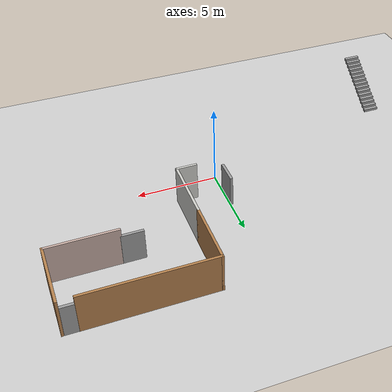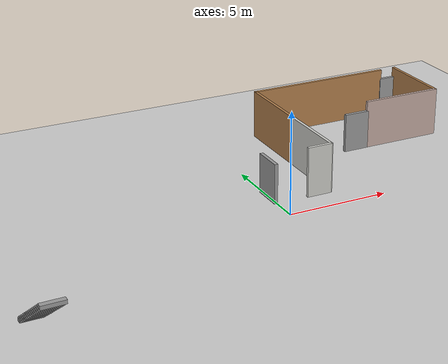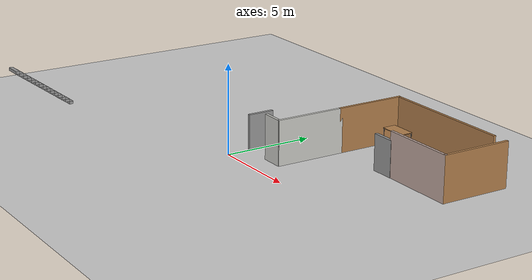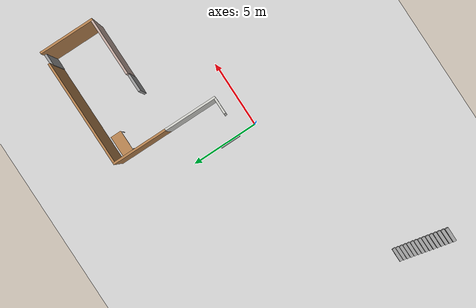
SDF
<sdf version="1.6">
 <world name="default">
  <model name="ground_plane">
   <static>1</static>
   <link name="link">
    <collision name="collision">
     <geometry><plane><normal>0 0 1</normal><size>100 100</size></plane></geometry>
     <surface>
      <contact><collide_bitmask>65535</collide_bitmask></contact>
      <friction><ode><mu>100</mu><mu2>50</mu2></ode></friction>
     </surface>
    </collision>
    <visual name="visual">
     <cast_shadows>0</cast_shadows>
     <geometry><plane><normal>0 0 1</normal><size>100 100</size></plane></geometry>
     <material>
      <script><uri>file://media/materials/scripts/gazebo.material</uri><name>Gazebo/Grey</name></script>
     </material>
    </visual>
   </link>
  </model>
  <model name="table">
   <static>1</static>
   <link name="link">
    <collision name="surface">
     <pose>0 0 1 0 -0 0</pose>
     <geometry><box><size>1.5 0.8 0.03</size></box></geometry>
     <surface><friction><ode><mu>0.6</mu><mu2>0.6</mu2></ode></friction></surface>
    </collision>
    <visual name="visual1">
     <pose>0 0 1 0 -0 0</pose>
     <geometry><box><size>1.5 0.8 0.03</size></box></geometry>
     <material>
      <script><uri>file://media/materials/scripts/gazebo.material</uri><name>Gazebo/Wood</name></script>
     </material>
    </visual>
    <collision name="front_left_leg">
     <pose>0.68 0.38 0.5 0 -0 0</pose>
     <geometry><cylinder><radius>0.02</radius><length>1</length></cylinder></geometry>
    </collision>
    <visual name="front_left_leg">
     <pose>0.68 0.38 0.5 0 -0 0</pose>
     <geometry><cylinder><radius>0.02</radius><length>1</length></cylinder></geometry>
     <material>
      <script><uri>file://media/materials/scripts/gazebo.material</uri><name>Gazebo/Grey</name></script>
     </material>
    </visual>
    <collision name="front_right_leg">
     <pose>0.68 -0.38 0.5 0 -0 0</pose>
     <geometry><cylinder><radius>0.02</radius><length>1</length></cylinder></geometry>
    </collision>
    <visual name="front_right_leg">
     <pose>0.68 -0.38 0.5 0 -0 0</pose>
     <geometry><cylinder><radius>0.02</radius><length>1</length></cylinder></geometry>
     <material>
      <script><uri>file://media/materials/scripts/gazebo.material</uri><name>Gazebo/Grey</name></script>
     </material>
    </visual>
    <collision name="back_right_leg">
     <pose>-0.68 -0.38 0.5 0 -0 0</pose>
     <geometry><cylinder><radius>0.02</radius><length>1</length></cylinder></geometry>
    </collision>
    <visual name="back_right_leg">
     <pose>-0.68 -0.38 0.5 0 -0 0</pose>
     <geometry><cylinder><radius>0.02</radius><length>1</length></cylinder></geometry>
     <material>
      <script><uri>file://media/materials/scripts/gazebo.material</uri><name>Gazebo/Grey</name></script>
     </material>
    </visual>
    <collision name="back_left_leg">
     <pose>-0.68 0.38 0.5 0 -0 0</pose>
     <geometry><cylinder><radius>0.02</radius><length>1</length></cylinder></geometry>
    </collision>
    <visual name="back_left_leg">
     <pose>-0.68 0.38 0.5 0 -0 0</pose>
     <geometry><cylinder><radius>0.02</radius><length>1</length></cylinder></geometry>
     <material>
      <script><uri>file://media/materials/scripts/gazebo.material</uri><name>Gazebo/Grey</name></script>
     </material>
    </visual>
   </link>
   <pose>3.83374 8.23259 0 0 -0 0</pose>
  </model>
  <model name="MyHouse">
   <link name="Door_2">
    <pose>11.9351 7.82689 0 0 -0 0</pose>
    <visual name="Door_2_Visual">
     <pose>0 0 1 0 -0 0</pose>
     <geometry><box><size>0.9 0.17 2</size></box></geometry>
     <material>
      <script><uri>file://media/materials/scripts/gazebo.material</uri><name>Gazebo/Grey</name></script>
      <shader type="pixel"/>
     </material>
    </visual>
    <collision name="Door_2_Collision">
     <pose>0 0 1 0 -0 0</pose>
     <geometry><box><size>0.9 0.17 2</size></box></geometry>
     <surface>
      <friction>
       <ode><mu>1</mu><mu2>1</mu2><fdir1>0 0 0</fdir1><slip1>0</slip1><slip2>0</slip2></ode>
       <torsional>
        <coefficient>1</coefficient>
        <patch_radius>0</patch_radius>
        <surface_radius>0</surface_radius>
        <use_patch_radius>1</use_patch_radius>
        <ode><slip>0</slip></ode>
       </torsional>
      </friction>
      <bounce><restitution_coefficient>0</restitution_coefficient><threshold>1e+06</threshold></bounce>
      <contact>
       <collide_without_contact>0</collide_without_contact>
       <collide_without_contact_bitmask>1</collide_without_contact_bitmask>
       <collide_bitmask>1</collide_bitmask>
       <ode>
        <soft_cfm>0</soft_cfm>
        <soft_erp>0.2</soft_erp>
        <kp>1e+13</kp>
        <kd>1</kd>
        <max_vel>0.01</max_vel>
        <min_depth>0</min_depth>
       </ode>
       <bullet>
        <split_impulse>1</split_impulse>
        <split_impulse_penetration_threshold>-0.01</split_impulse_penetration_threshold>
        <soft_cfm>0</soft_cfm>
        <soft_erp>0.2</soft_erp>
        <kp>1e+13</kp>
        <kd>1</kd>
       </bullet>
      </contact>
     </surface>
    </collision>
   </link>
   <link name="Door_3">
    <pose>1.0088 0.841968 0 0 -0 1.57718</pose>
    <inertial>
     <inertia><ixx>0</ixx><ixy>0</ixy><ixz>0</ixz><iyy>0</iyy><iyz>0</iyz><izz>0</izz></inertia>
     <mass>0</mass>
    </inertial>
    <visual name="Door_3_Visual">
     <pose>0 0 1 0 -0 0</pose>
     <geometry><box><size>1.47298 0.17 2</size></box></geometry>
     <material>
      <script><uri>file://media/materials/scripts/gazebo.material</uri><name>Gazebo/Grey</name></script>
      <shader type="pixel"/>
     </material>
    </visual>
    <collision name="Door_3_Collision">
     <pose>0 0 1 0 -0 0</pose>
     <geometry><box><size>1.47298 0.17 2</size></box></geometry>
     <surface>
      <friction>
       <ode><mu>1</mu><mu2>1</mu2><fdir1>0 0 0</fdir1><slip1>0</slip1><slip2>0</slip2></ode>
       <torsional>
        <coefficient>1</coefficient>
        <patch_radius>0</patch_radius>
        <surface_radius>0</surface_radius>
        <use_patch_radius>1</use_patch_radius>
        <ode><slip>0</slip></ode>
       </torsional>
      </friction>
      <bounce><restitution_coefficient>0</restitution_coefficient><threshold>1e+06</threshold></bounce>
      <contact>
       <collide_without_contact>0</collide_without_contact>
       <collide_without_contact_bitmask>1</collide_without_contact_bitmask>
       <collide_bitmask>1</collide_bitmask>
       <ode>
        <soft_cfm>0</soft_cfm>
        <soft_erp>0.2</soft_erp>
        <kp>1e+13</kp>
        <kd>1</kd>
        <max_vel>0.01</max_vel>
        <min_depth>0</min_depth>
       </ode>
       <bullet>
        <split_impulse>1</split_impulse>
        <split_impulse_penetration_threshold>-0.01</split_impulse_penetration_threshold>
        <soft_cfm>0</soft_cfm>
        <soft_erp>0.2</soft_erp>
        <kp>1e+13</kp>
        <kd>1</kd>
       </bullet>
      </contact>
     </surface>
    </collision>
   </link>
   <link name="Door_4">
    <pose>7.66176 3.99526 0 0 -0 0</pose>
    <inertial>
     <inertia><ixx>0</ixx><ixy>0</ixy><ixz>0</ixz><iyy>0</iyy><iyz>0</iyz><izz>0</izz></inertia>
     <mass>0</mass>
    </inertial>
    <visual name="Door_4_Visual">
     <pose>0 0 1 0 -0 0</pose>
     <geometry><box><size>1.33624 0.17 2</size></box></geometry>
     <material>
      <script><uri>file://media/materials/scripts/gazebo.material</uri><name>Gazebo/Grey</name></script>
      <shader type="pixel"/>
     </material>
    </visual>
    <collision name="Door_4_Collision">
     <pose>0 0 1 0 -0 0</pose>
     <geometry><box><size>1.33624 0.17 2</size></box></geometry>
     <surface>
      <friction>
       <ode><mu>1</mu><mu2>1</mu2><fdir1>0 0 0</fdir1><slip1>0</slip1><slip2>0</slip2></ode>
       <torsional>
        <coefficient>1</coefficient>
        <patch_radius>0</patch_radius>
        <surface_radius>0</surface_radius>
        <use_patch_radius>1</use_patch_radius>
        <ode><slip>0</slip></ode>
       </torsional>
      </friction>
      <bounce><restitution_coefficient>0</restitution_coefficient><threshold>1e+06</threshold></bounce>
      <contact>
       <collide_without_contact>0</collide_without_contact>
       <collide_without_contact_bitmask>1</collide_without_contact_bitmask>
       <collide_bitmask>1</collide_bitmask>
       <ode>
        <soft_cfm>0</soft_cfm>
        <soft_erp>0.2</soft_erp>
        <kp>1e+13</kp>
        <kd>1</kd>
        <max_vel>0.01</max_vel>
        <min_depth>0</min_depth>
       </ode>
       <bullet>
        <split_impulse>1</split_impulse>
        <split_impulse_penetration_threshold>-0.01</split_impulse_penetration_threshold>
        <soft_cfm>0</soft_cfm>
        <soft_erp>0.2</soft_erp>
        <kp>1e+13</kp>
        <kd>1</kd>
       </bullet>
      </contact>
     </surface>
    </collision>
   </link>
   <link name="Stairs_0">
    <visual name="Stairs_0_Visual_14">
     <pose>-11.8697 -7.73923 2.41667 0 -0 0</pose>
     <geometry><box><size>1 0.233333 0.166667</size></box></geometry>
     <material>
      <script><uri>file://media/materials/scripts/gazebo.material</uri><name>Gazebo/Grey</name></script>
      <ambient>1 1 1 1</ambient>
      <shader type="pixel"/>
     </material>
     <meta><layer>0</layer></meta>
    </visual>
    <visual name="Stairs_0_Visual_2">
     <pose>-11.8697 -4.93923 0.416667 0 -0 0</pose>
     <geometry><box><size>1 0.233333 0.166667</size></box></geometry>
     <material>
      <script><uri>file://media/materials/scripts/gazebo.material</uri><name>Gazebo/Grey</name></script>
      <ambient>1 1 1 1</ambient>
      <shader type="pixel"/>
     </material>
     <meta><layer>0</layer></meta>
    </visual>
    <visual name="Stairs_0_Visual_12">
     <pose>-11.8697 -7.27256 2.08333 0 -0 0</pose>
     <geometry><box><size>1 0.233333 0.166667</size></box></geometry>
     <material>
      <script><uri>file://media/materials/scripts/gazebo.material</uri><name>Gazebo/Grey</name></script>
      <ambient>1 1 1 1</ambient>
      <shader type="pixel"/>
     </material>
     <meta><layer>0</layer></meta>
    </visual>
    <visual name="Stairs_0_Visual_9">
     <pose>-11.8697 -6.57256 1.58333 0 -0 0</pose>
     <geometry><box><size>1 0.233333 0.166667</size></box></geometry>
     <material>
      <script><uri>file://media/materials/scripts/gazebo.material</uri><name>Gazebo/Grey</name></script>
      <ambient>1 1 1 1</ambient>
      <shader type="pixel"/>
     </material>
     <meta><layer>0</layer></meta>
    </visual>
    <visual name="Stairs_0_Visual_8">
     <pose>-11.8697 -6.33923 1.41667 0 -0 0</pose>
     <geometry><box><size>1 0.233333 0.166667</size></box></geometry>
     <material>
      <script><uri>file://media/materials/scripts/gazebo.material</uri><name>Gazebo/Grey</name></script>
      <ambient>1 1 1 1</ambient>
      <shader type="pixel"/>
     </material>
     <meta><layer>0</layer></meta>
    </visual>
    <visual name="Stairs_0_Visual_11">
     <pose>-11.8697 -7.03923 1.91667 0 -0 0</pose>
     <geometry><box><size>1 0.233333 0.166667</size></box></geometry>
     <material>
      <script><uri>file://media/materials/scripts/gazebo.material</uri><name>Gazebo/Grey</name></script>
      <ambient>1 1 1 1</ambient>
      <shader type="pixel"/>
     </material>
     <meta><layer>0</layer></meta>
    </visual>
    <visual name="Stairs_0_Visual_13">
     <pose>-11.8697 -7.50589 2.25 0 -0 0</pose>
     <geometry><box><size>1 0.233333 0.166667</size></box></geometry>
     <material>
      <script><uri>file://media/materials/scripts/gazebo.material</uri><name>Gazebo/Grey</name></script>
      <ambient>1 1 1 1</ambient>
      <shader type="pixel"/>
     </material>
     <meta><layer>0</layer></meta>
    </visual>
    <visual name="Stairs_0_Visual_6">
     <pose>-11.8697 -5.87256 1.08333 0 -0 0</pose>
     <geometry><box><size>1 0.233333 0.166667</size></box></geometry>
     <material>
      <script><uri>file://media/materials/scripts/gazebo.material</uri><name>Gazebo/Grey</name></script>
      <ambient>1 1 1 1</ambient>
      <shader type="pixel"/>
     </material>
     <meta><layer>0</layer></meta>
    </visual>
    <visual name="Stairs_0_Visual_1">
     <pose>-11.8697 -4.70589 0.25 0 -0 0</pose>
     <geometry><box><size>1 0.233333 0.166667</size></box></geometry>
     <material>
      <script><uri>file://media/materials/scripts/gazebo.material</uri><name>Gazebo/Grey</name></script>
      <ambient>1 1 1 1</ambient>
      <shader type="pixel"/>
     </material>
     <meta><layer>0</layer></meta>
    </visual>
    <visual name="Stairs_0_Visual_3">
     <pose>-11.8697 -5.17256 0.583333 0 -0 0</pose>
     <geometry><box><size>1 0.233333 0.166667</size></box></geometry>
     <material>
      <script><uri>file://media/materials/scripts/gazebo.material</uri><name>Gazebo/Grey</name></script>
      <ambient>1 1 1 1</ambient>
      <shader type="pixel"/>
     </material>
     <meta><layer>0</layer></meta>
    </visual>
    <visual name="Stairs_0_Visual_4">
     <pose>-11.8697 -5.40589 0.75 0 -0 0</pose>
     <geometry><box><size>1 0.233333 0.166667</size></box></geometry>
     <material>
      <script><uri>file://media/materials/scripts/gazebo.material</uri><name>Gazebo/Grey</name></script>
      <ambient>1 1 1 1</ambient>
      <shader type="pixel"/>
     </material>
     <meta><layer>0</layer></meta>
    </visual>
    <visual name="Stairs_0_Visual_7">
     <pose>-11.8697 -6.10589 1.25 0 -0 0</pose>
     <geometry><box><size>1 0.233333 0.166667</size></box></geometry>
     <material>
      <script><uri>file://media/materials/scripts/gazebo.material</uri><name>Gazebo/Grey</name></script>
      <ambient>1 1 1 1</ambient>
      <shader type="pixel"/>
     </material>
     <meta><layer>0</layer></meta>
    </visual>
    <visual name="Stairs_0_Visual_10">
     <pose>-11.8697 -6.80589 1.75 0 -0 0</pose>
     <geometry><box><size>1 0.233333 0.166667</size></box></geometry>
     <material>
      <script><uri>file://media/materials/scripts/gazebo.material</uri><name>Gazebo/Grey</name></script>
      <ambient>1 1 1 1</ambient>
      <shader type="pixel"/>
     </material>
     <meta><layer>0</layer></meta>
    </visual>
    <visual name="Stairs_0_Visual_0">
     <pose>-11.8697 -4.47256 0.083333 0 -0 0</pose>
     <geometry><box><size>1 0.233333 0.166667</size></box></geometry>
     <material>
      <script><uri>file://media/materials/scripts/gazebo.material</uri><name>Gazebo/Grey</name></script>
      <ambient>1 1 1 1</ambient>
      <shader type="pixel"/>
     </material>
     <meta><layer>0</layer></meta>
    </visual>
    <visual name="Stairs_0_Visual_5">
     <pose>-11.8697 -5.63923 0.916667 0 -0 0</pose>
     <geometry><box><size>1 0.233333 0.166667</size></box></geometry>
     <material>
      <script><uri>file://media/materials/scripts/gazebo.material</uri><name>Gazebo/Grey</name></script>
      <ambient>1 1 1 1</ambient>
      <shader type="pixel"/>
     </material>
     <meta><layer>0</layer></meta>
    </visual>
    <collision name="Stairs_0_Collision_1">
     <pose>-11.8697 -4.70589 0.25 0 -0 0</pose>
     <geometry><box><size>1 0.233333 0.166667</size></box></geometry>
     <surface>
      <friction>
       <ode><mu>1</mu><mu2>1</mu2><fdir1>0 0 0</fdir1><slip1>0</slip1><slip2>0</slip2></ode>
       <torsional>
        <coefficient>1</coefficient>
        <patch_radius>0</patch_radius>
        <surface_radius>0</surface_radius>
        <use_patch_radius>1</use_patch_radius>
        <ode><slip>0</slip></ode>
       </torsional>
      </friction>
      <bounce><restitution_coefficient>0</restitution_coefficient><threshold>1e+06</threshold></bounce>
      <contact>
       <collide_without_contact>0</collide_without_contact>
       <collide_without_contact_bitmask>1</collide_without_contact_bitmask>
       <collide_bitmask>1</collide_bitmask>
       <ode>
        <soft_cfm>0</soft_cfm>
        <soft_erp>0.2</soft_erp>
        <kp>1e+13</kp>
        <kd>1</kd>
        <max_vel>0.01</max_vel>
        <min_depth>0</min_depth>
       </ode>
       <bullet>
        <split_impulse>1</split_impulse>
        <split_impulse_penetration_threshold>-0.01</split_impulse_penetration_threshold>
        <soft_cfm>0</soft_cfm>
        <soft_erp>0.2</soft_erp>
        <kp>1e+13</kp>
        <kd>1</kd>
       </bullet>
      </contact>
     </surface>
    </collision>
    <collision name="Stairs_0_Collision_7">
     <pose>-11.8697 -6.10589 1.25 0 -0 0</pose>
     <geometry><box><size>1 0.233333 0.166667</size></box></geometry>
     <surface>
      <friction>
       <ode><mu>1</mu><mu2>1</mu2><fdir1>0 0 0</fdir1><slip1>0</slip1><slip2>0</slip2></ode>
       <torsional>
        <coefficient>1</coefficient>
        <patch_radius>0</patch_radius>
        <surface_radius>0</surface_radius>
        <use_patch_radius>1</use_patch_radius>
        <ode><slip>0</slip></ode>
       </torsional>
      </friction>
      <bounce><restitution_coefficient>0</restitution_coefficient><threshold>1e+06</threshold></bounce>
      <contact>
       <collide_without_contact>0</collide_without_contact>
       <collide_without_contact_bitmask>1</collide_without_contact_bitmask>
       <collide_bitmask>1</collide_bitmask>
       <ode>
        <soft_cfm>0</soft_cfm>
        <soft_erp>0.2</soft_erp>
        <kp>1e+13</kp>
        <kd>1</kd>
        <max_vel>0.01</max_vel>
        <min_depth>0</min_depth>
       </ode>
       <bullet>
        <split_impulse>1</split_impulse>
        <split_impulse_penetration_threshold>-0.01</split_impulse_penetration_threshold>
        <soft_cfm>0</soft_cfm>
        <soft_erp>0.2</soft_erp>
        <kp>1e+13</kp>
        <kd>1</kd>
       </bullet>
      </contact>
     </surface>
    </collision>
    <collision name="Stairs_0_Collision_10">
     <pose>-11.8697 -6.80589 1.75 0 -0 0</pose>
     <geometry><box><size>1 0.233333 0.166667</size></box></geometry>
     <surface>
      <friction>
       <ode><mu>1</mu><mu2>1</mu2><fdir1>0 0 0</fdir1><slip1>0</slip1><slip2>0</slip2></ode>
       <torsional>
        <coefficient>1</coefficient>
        <patch_radius>0</patch_radius>
        <surface_radius>0</surface_radius>
        <use_patch_radius>1</use_patch_radius>
        <ode><slip>0</slip></ode>
       </torsional>
      </friction>
      <bounce><restitution_coefficient>0</restitution_coefficient><threshold>1e+06</threshold></bounce>
      <contact>
       <collide_without_contact>0</collide_without_contact>
       <collide_without_contact_bitmask>1</collide_without_contact_bitmask>
       <collide_bitmask>1</collide_bitmask>
       <ode>
        <soft_cfm>0</soft_cfm>
        <soft_erp>0.2</soft_erp>
        <kp>1e+13</kp>
        <kd>1</kd>
        <max_vel>0.01</max_vel>
        <min_depth>0</min_depth>
       </ode>
       <bullet>
        <split_impulse>1</split_impulse>
        <split_impulse_penetration_threshold>-0.01</split_impulse_penetration_threshold>
        <soft_cfm>0</soft_cfm>
        <soft_erp>0.2</soft_erp>
        <kp>1e+13</kp>
        <kd>1</kd>
       </bullet>
      </contact>
     </surface>
    </collision>
    <collision name="Stairs_0_Collision_14">
     <pose>-11.8697 -7.73923 2.41667 0 -0 0</pose>
     <geometry><box><size>1 0.233333 0.166667</size></box></geometry>
     <surface>
      <friction>
       <ode><mu>1</mu><mu2>1</mu2><fdir1>0 0 0</fdir1><slip1>0</slip1><slip2>0</slip2></ode>
       <torsional>
        <coefficient>1</coefficient>
        <patch_radius>0</patch_radius>
        <surface_radius>0</surface_radius>
        <use_patch_radius>1</use_patch_radius>
        <ode><slip>0</slip></ode>
       </torsional>
      </friction>
      <bounce><restitution_coefficient>0</restitution_coefficient><threshold>1e+06</threshold></bounce>
      <contact>
       <collide_without_contact>0</collide_without_contact>
       <collide_without_contact_bitmask>1</collide_without_contact_bitmask>
       <collide_bitmask>1</collide_bitmask>
       <ode>
        <soft_cfm>0</soft_cfm>
        <soft_erp>0.2</soft_erp>
        <kp>1e+13</kp>
        <kd>1</kd>
        <max_vel>0.01</max_vel>
        <min_depth>0</min_depth>
       </ode>
       <bullet>
        <split_impulse>1</split_impulse>
        <split_impulse_penetration_threshold>-0.01</split_impulse_penetration_threshold>
        <soft_cfm>0</soft_cfm>
        <soft_erp>0.2</soft_erp>
        <kp>1e+13</kp>
        <kd>1</kd>
       </bullet>
      </contact>
     </surface>
    </collision>
    <collision name="Stairs_0_Collision_4">
     <pose>-11.8697 -5.40589 0.75 0 -0 0</pose>
     <geometry><box><size>1 0.233333 0.166667</size></box></geometry>
     <surface>
      <friction>
       <ode><mu>1</mu><mu2>1</mu2><fdir1>0 0 0</fdir1><slip1>0</slip1><slip2>0</slip2></ode>
       <torsional>
        <coefficient>1</coefficient>
        <patch_radius>0</patch_radius>
        <surface_radius>0</surface_radius>
        <use_patch_radius>1</use_patch_radius>
        <ode><slip>0</slip></ode>
       </torsional>
      </friction>
      <bounce><restitution_coefficient>0</restitution_coefficient><threshold>1e+06</threshold></bounce>
      <contact>
       <collide_without_contact>0</collide_without_contact>
       <collide_without_contact_bitmask>1</collide_without_contact_bitmask>
       <collide_bitmask>1</collide_bitmask>
       <ode>
        <soft_cfm>0</soft_cfm>
        <soft_erp>0.2</soft_erp>
        <kp>1e+13</kp>
        <kd>1</kd>
        <max_vel>0.01</max_vel>
        <min_depth>0</min_depth>
       </ode>
       <bullet>
        <split_impulse>1</split_impulse>
        <split_impulse_penetration_threshold>-0.01</split_impulse_penetration_threshold>
        <soft_cfm>0</soft_cfm>
        <soft_erp>0.2</soft_erp>
        <kp>1e+13</kp>
        <kd>1</kd>
       </bullet>
      </contact>
     </surface>
    </collision>
    <collision name="Stairs_0_Collision_13">
     <pose>-11.8697 -7.50589 2.25 0 -0 0</pose>
     <geometry><box><size>1 0.233333 0.166667</size></box></geometry>
     <surface>
      <friction>
       <ode><mu>1</mu><mu2>1</mu2><fdir1>0 0 0</fdir1><slip1>0</slip1><slip2>0</slip2></ode>
       <torsional>
        <coefficient>1</coefficient>
        <patch_radius>0</patch_radius>
        <surface_radius>0</surface_radius>
        <use_patch_radius>1</use_patch_radius>
        <ode><slip>0</slip></ode>
       </torsional>
      </friction>
      <bounce><restitution_coefficient>0</restitution_coefficient><threshold>1e+06</threshold></bounce>
      <contact>
       <collide_without_contact>0</collide_without_contact>
       <collide_without_contact_bitmask>1</collide_without_contact_bitmask>
       <collide_bitmask>1</collide_bitmask>
       <ode>
        <soft_cfm>0</soft_cfm>
        <soft_erp>0.2</soft_erp>
        <kp>1e+13</kp>
        <kd>1</kd>
        <max_vel>0.01</max_vel>
        <min_depth>0</min_depth>
       </ode>
       <bullet>
        <split_impulse>1</split_impulse>
        <split_impulse_penetration_threshold>-0.01</split_impulse_penetration_threshold>
        <soft_cfm>0</soft_cfm>
        <soft_erp>0.2</soft_erp>
        <kp>1e+13</kp>
        <kd>1</kd>
       </bullet>
      </contact>
     </surface>
    </collision>
    <collision name="Stairs_0_Collision_6">
     <pose>-11.8697 -5.87256 1.08333 0 -0 0</pose>
     <geometry><box><size>1 0.233333 0.166667</size></box></geometry>
     <surface>
      <friction>
       <ode><mu>1</mu><mu2>1</mu2><fdir1>0 0 0</fdir1><slip1>0</slip1><slip2>0</slip2></ode>
       <torsional>
        <coefficient>1</coefficient>
        <patch_radius>0</patch_radius>
        <surface_radius>0</surface_radius>
        <use_patch_radius>1</use_patch_radius>
        <ode><slip>0</slip></ode>
       </torsional>
      </friction>
      <bounce><restitution_coefficient>0</restitution_coefficient><threshold>1e+06</threshold></bounce>
      <contact>
       <collide_without_contact>0</collide_without_contact>
       <collide_without_contact_bitmask>1</collide_without_contact_bitmask>
       <collide_bitmask>1</collide_bitmask>
       <ode>
        <soft_cfm>0</soft_cfm>
        <soft_erp>0.2</soft_erp>
        <kp>1e+13</kp>
        <kd>1</kd>
        <max_vel>0.01</max_vel>
        <min_depth>0</min_depth>
       </ode>
       <bullet>
        <split_impulse>1</split_impulse>
        <split_impulse_penetration_threshold>-0.01</split_impulse_penetration_threshold>
        <soft_cfm>0</soft_cfm>
        <soft_erp>0.2</soft_erp>
        <kp>1e+13</kp>
        <kd>1</kd>
       </bullet>
      </contact>
     </surface>
    </collision>
    <collision name="Stairs_0_Collision_3">
     <pose>-11.8697 -5.17256 0.583333 0 -0 0</pose>
     <geometry><box><size>1 0.233333 0.166667</size></box></geometry>
     <surface>
      <friction>
       <ode><mu>1</mu><mu2>1</mu2><fdir1>0 0 0</fdir1><slip1>0</slip1><slip2>0</slip2></ode>
       <torsional>
        <coefficient>1</coefficient>
        <patch_radius>0</patch_radius>
        <surface_radius>0</surface_radius>
        <use_patch_radius>1</use_patch_radius>
        <ode><slip>0</slip></ode>
       </torsional>
      </friction>
      <bounce><restitution_coefficient>0</restitution_coefficient><threshold>1e+06</threshold></bounce>
      <contact>
       <collide_without_contact>0</collide_without_contact>
       <collide_without_contact_bitmask>1</collide_without_contact_bitmask>
       <collide_bitmask>1</collide_bitmask>
       <ode>
        <soft_cfm>0</soft_cfm>
        <soft_erp>0.2</soft_erp>
        <kp>1e+13</kp>
        <kd>1</kd>
        <max_vel>0.01</max_vel>
        <min_depth>0</min_depth>
       </ode>
       <bullet>
        <split_impulse>1</split_impulse>
        <split_impulse_penetration_threshold>-0.01</split_impulse_penetration_threshold>
        <soft_cfm>0</soft_cfm>
        <soft_erp>0.2</soft_erp>
        <kp>1e+13</kp>
        <kd>1</kd>
       </bullet>
      </contact>
     </surface>
    </collision>
    <collision name="Stairs_0_Collision_8">
     <pose>-11.8697 -6.33923 1.41667 0 -0 0</pose>
     <geometry><box><size>1 0.233333 0.166667</size></box></geometry>
     <surface>
      <friction>
       <ode><mu>1</mu><mu2>1</mu2><fdir1>0 0 0</fdir1><slip1>0</slip1><slip2>0</slip2></ode>
       <torsional>
        <coefficient>1</coefficient>
        <patch_radius>0</patch_radius>
        <surface_radius>0</surface_radius>
        <use_patch_radius>1</use_patch_radius>
        <ode><slip>0</slip></ode>
       </torsional>
      </friction>
      <bounce><restitution_coefficient>0</restitution_coefficient><threshold>1e+06</threshold></bounce>
      <contact>
       <collide_without_contact>0</collide_without_contact>
       <collide_without_contact_bitmask>1</collide_without_contact_bitmask>
       <collide_bitmask>1</collide_bitmask>
       <ode>
        <soft_cfm>0</soft_cfm>
        <soft_erp>0.2</soft_erp>
        <kp>1e+13</kp>
        <kd>1</kd>
        <max_vel>0.01</max_vel>
        <min_depth>0</min_depth>
       </ode>
       <bullet>
        <split_impulse>1</split_impulse>
        <split_impulse_penetration_threshold>-0.01</split_impulse_penetration_threshold>
        <soft_cfm>0</soft_cfm>
        <soft_erp>0.2</soft_erp>
        <kp>1e+13</kp>
        <kd>1</kd>
       </bullet>
      </contact>
     </surface>
    </collision>
    <collision name="Stairs_0_Collision_2">
     <pose>-11.8697 -4.93923 0.416667 0 -0 0</pose>
     <geometry><box><size>1 0.233333 0.166667</size></box></geometry>
     <surface>
      <friction>
       <ode><mu>1</mu><mu2>1</mu2><fdir1>0 0 0</fdir1><slip1>0</slip1><slip2>0</slip2></ode>
       <torsional>
        <coefficient>1</coefficient>
        <patch_radius>0</patch_radius>
        <surface_radius>0</surface_radius>
        <use_patch_radius>1</use_patch_radius>
        <ode><slip>0</slip></ode>
       </torsional>
      </friction>
      <bounce><restitution_coefficient>0</restitution_coefficient><threshold>1e+06</threshold></bounce>
      <contact>
       <collide_without_contact>0</collide_without_contact>
       <collide_without_contact_bitmask>1</collide_without_contact_bitmask>
       <collide_bitmask>1</collide_bitmask>
       <ode>
        <soft_cfm>0</soft_cfm>
        <soft_erp>0.2</soft_erp>
        <kp>1e+13</kp>
        <kd>1</kd>
        <max_vel>0.01</max_vel>
        <min_depth>0</min_depth>
       </ode>
       <bullet>
        <split_impulse>1</split_impulse>
        <split_impulse_penetration_threshold>-0.01</split_impulse_penetration_threshold>
        <soft_cfm>0</soft_cfm>
        <soft_erp>0.2</soft_erp>
        <kp>1e+13</kp>
        <kd>1</kd>
       </bullet>
      </contact>
     </surface>
    </collision>
    <collision name="Stairs_0_Collision_11">
     <pose>-11.8697 -7.03923 1.91667 0 -0 0</pose>
     <geometry><box><size>1 0.233333 0.166667</size></box></geometry>
     <surface>
      <friction>
       <ode><mu>1</mu><mu2>1</mu2><fdir1>0 0 0</fdir1><slip1>0</slip1><slip2>0</slip2></ode>
       <torsional>
        <coefficient>1</coefficient>
        <patch_radius>0</patch_radius>
        <surface_radius>0</surface_radius>
        <use_patch_radius>1</use_patch_radius>
        <ode><slip>0</slip></ode>
       </torsional>
      </friction>
      <bounce><restitution_coefficient>0</restitution_coefficient><threshold>1e+06</threshold></bounce>
      <contact>
       <collide_without_contact>0</collide_without_contact>
       <collide_without_contact_bitmask>1</collide_without_contact_bitmask>
       <collide_bitmask>1</collide_bitmask>
       <ode>
        <soft_cfm>0</soft_cfm>
        <soft_erp>0.2</soft_erp>
        <kp>1e+13</kp>
        <kd>1</kd>
        <max_vel>0.01</max_vel>
        <min_depth>0</min_depth>
       </ode>
       <bullet>
        <split_impulse>1</split_impulse>
        <split_impulse_penetration_threshold>-0.01</split_impulse_penetration_threshold>
        <soft_cfm>0</soft_cfm>
        <soft_erp>0.2</soft_erp>
        <kp>1e+13</kp>
        <kd>1</kd>
       </bullet>
      </contact>
     </surface>
    </collision>
    <collision name="Stairs_0_Collision_9">
     <pose>-11.8697 -6.57256 1.58333 0 -0 0</pose>
     <geometry><box><size>1 0.233333 0.166667</size></box></geometry>
     <surface>
      <friction>
       <ode><mu>1</mu><mu2>1</mu2><fdir1>0 0 0</fdir1><slip1>0</slip1><slip2>0</slip2></ode>
       <torsional>
        <coefficient>1</coefficient>
        <patch_radius>0</patch_radius>
        <surface_radius>0</surface_radius>
        <use_patch_radius>1</use_patch_radius>
        <ode><slip>0</slip></ode>
       </torsional>
      </friction>
      <bounce><restitution_coefficient>0</restitution_coefficient><threshold>1e+06</threshold></bounce>
      <contact>
       <collide_without_contact>0</collide_without_contact>
       <collide_without_contact_bitmask>1</collide_without_contact_bitmask>
       <collide_bitmask>1</collide_bitmask>
       <ode>
        <soft_cfm>0</soft_cfm>
        <soft_erp>0.2</soft_erp>
        <kp>1e+13</kp>
        <kd>1</kd>
        <max_vel>0.01</max_vel>
        <min_depth>0</min_depth>
       </ode>
       <bullet>
        <split_impulse>1</split_impulse>
        <split_impulse_penetration_threshold>-0.01</split_impulse_penetration_threshold>
        <soft_cfm>0</soft_cfm>
        <soft_erp>0.2</soft_erp>
        <kp>1e+13</kp>
        <kd>1</kd>
       </bullet>
      </contact>
     </surface>
    </collision>
    <collision name="Stairs_0_Collision_12">
     <pose>-11.8697 -7.27256 2.08333 0 -0 0</pose>
     <geometry><box><size>1 0.233333 0.166667</size></box></geometry>
     <surface>
      <friction>
       <ode><mu>1</mu><mu2>1</mu2><fdir1>0 0 0</fdir1><slip1>0</slip1><slip2>0</slip2></ode>
       <torsional>
        <coefficient>1</coefficient>
        <patch_radius>0</patch_radius>
        <surface_radius>0</surface_radius>
        <use_patch_radius>1</use_patch_radius>
        <ode><slip>0</slip></ode>
       </torsional>
      </friction>
      <bounce><restitution_coefficient>0</restitution_coefficient><threshold>1e+06</threshold></bounce>
      <contact>
       <collide_without_contact>0</collide_without_contact>
       <collide_without_contact_bitmask>1</collide_without_contact_bitmask>
       <collide_bitmask>1</collide_bitmask>
       <ode>
        <soft_cfm>0</soft_cfm>
        <soft_erp>0.2</soft_erp>
        <kp>1e+13</kp>
        <kd>1</kd>
        <max_vel>0.01</max_vel>
        <min_depth>0</min_depth>
       </ode>
       <bullet>
        <split_impulse>1</split_impulse>
        <split_impulse_penetration_threshold>-0.01</split_impulse_penetration_threshold>
        <soft_cfm>0</soft_cfm>
        <soft_erp>0.2</soft_erp>
        <kp>1e+13</kp>
        <kd>1</kd>
       </bullet>
      </contact>
     </surface>
    </collision>
    <collision name="Stairs_0_Collision_5">
     <pose>-11.8697 -5.63923 0.916667 0 -0 0</pose>
     <geometry><box><size>1 0.233333 0.166667</size></box></geometry>
     <surface>
      <friction>
       <ode><mu>1</mu><mu2>1</mu2><fdir1>0 0 0</fdir1><slip1>0</slip1><slip2>0</slip2></ode>
       <torsional>
        <coefficient>1</coefficient>
        <patch_radius>0</patch_radius>
        <surface_radius>0</surface_radius>
        <use_patch_radius>1</use_patch_radius>
        <ode><slip>0</slip></ode>
       </torsional>
      </friction>
      <bounce><restitution_coefficient>0</restitution_coefficient><threshold>1e+06</threshold></bounce>
      <contact>
       <collide_without_contact>0</collide_without_contact>
       <collide_without_contact_bitmask>1</collide_without_contact_bitmask>
       <collide_bitmask>1</collide_bitmask>
       <ode>
        <soft_cfm>0</soft_cfm>
        <soft_erp>0.2</soft_erp>
        <kp>1e+13</kp>
        <kd>1</kd>
        <max_vel>0.01</max_vel>
        <min_depth>0</min_depth>
       </ode>
       <bullet>
        <split_impulse>1</split_impulse>
        <split_impulse_penetration_threshold>-0.01</split_impulse_penetration_threshold>
        <soft_cfm>0</soft_cfm>
        <soft_erp>0.2</soft_erp>
        <kp>1e+13</kp>
        <kd>1</kd>
       </bullet>
      </contact>
     </surface>
    </collision>
    <collision name="Stairs_0_Collision_0">
     <pose>-11.8697 -4.47256 0.083333 0 -0 0</pose>
     <geometry><box><size>1 0.233333 0.166667</size></box></geometry>
     <surface>
      <friction>
       <ode><mu>1</mu><mu2>1</mu2><fdir1>0 0 0</fdir1><slip1>0</slip1><slip2>0</slip2></ode>
       <torsional>
        <coefficient>1</coefficient>
        <patch_radius>0</patch_radius>
        <surface_radius>0</surface_radius>
        <use_patch_radius>1</use_patch_radius>
        <ode><slip>0</slip></ode>
       </torsional>
      </friction>
      <bounce><restitution_coefficient>0</restitution_coefficient><threshold>1e+06</threshold></bounce>
      <contact>
       <collide_without_contact>0</collide_without_contact>
       <collide_without_contact_bitmask>1</collide_without_contact_bitmask>
       <collide_bitmask>1</collide_bitmask>
       <ode>
        <soft_cfm>0</soft_cfm>
        <soft_erp>0.2</soft_erp>
        <kp>1e+13</kp>
        <kd>1</kd>
        <max_vel>0.01</max_vel>
        <min_depth>0</min_depth>
       </ode>
       <bullet>
        <split_impulse>1</split_impulse>
        <split_impulse_penetration_threshold>-0.01</split_impulse_penetration_threshold>
        <soft_cfm>0</soft_cfm>
        <soft_erp>0.2</soft_erp>
        <kp>1e+13</kp>
        <kd>1</kd>
       </bullet>
      </contact>
     </surface>
    </collision>
   </link>
   <link name="Wall_23">
    <pose>3.88913 5.925 0 0 -0 1.5708</pose>
    <visual name="Wall_23_Visual">
     <pose>0 0 1.25 0 -0 0</pose>
     <geometry><box><size>4 0.15 2.5</size></box></geometry>
     <material>
      <script><uri>file://media/materials/scripts/gazebo.material</uri><name>Gazebo/Wood</name></script>
      <ambient>1 1 1 1</ambient>
      <shader type="pixel"/>
     </material>
     <meta><layer>0</layer></meta>
    </visual>
    <collision name="Wall_23_Collision">
     <pose>0 0 1.25 0 -0 0</pose>
     <geometry><box><size>4 0.15 2.5</size></box></geometry>
     <surface>
      <friction>
       <ode><mu>1</mu><mu2>1</mu2><fdir1>0 0 0</fdir1><slip1>0</slip1><slip2>0</slip2></ode>
       <torsional>
        <coefficient>1</coefficient>
        <patch_radius>0</patch_radius>
        <surface_radius>0</surface_radius>
        <use_patch_radius>1</use_patch_radius>
        <ode><slip>0</slip></ode>
       </torsional>
      </friction>
      <bounce><restitution_coefficient>0</restitution_coefficient><threshold>1e+06</threshold></bounce>
      <contact>
       <collide_without_contact>0</collide_without_contact>
       <collide_without_contact_bitmask>1</collide_without_contact_bitmask>
       <collide_bitmask>1</collide_bitmask>
       <ode>
        <soft_cfm>0</soft_cfm>
        <soft_erp>0.2</soft_erp>
        <kp>1e+13</kp>
        <kd>1</kd>
        <max_vel>0.01</max_vel>
        <min_depth>0</min_depth>
       </ode>
       <bullet>
        <split_impulse>1</split_impulse>
        <split_impulse_penetration_threshold>-0.01</split_impulse_penetration_threshold>
        <soft_cfm>0</soft_cfm>
        <soft_erp>0.2</soft_erp>
        <kp>1e+13</kp>
        <kd>1</kd>
       </bullet>
      </contact>
     </surface>
    </collision>
   </link>
   <link name="Wall_26">
    <pose>12.425 5.925 0 0 -0 1.5708</pose>
    <visual name="Wall_26_Visual">
     <pose>0 0 1.25 0 -0 0</pose>
     <geometry><box><size>4 0.15 2.5</size></box></geometry>
     <material>
      <script><uri>file://media/materials/scripts/gazebo.material</uri><name>Gazebo/Wood</name></script>
      <ambient>1 1 1 1</ambient>
      <shader type="pixel"/>
     </material>
     <meta><layer>0</layer></meta>
    </visual>
    <collision name="Wall_26_Collision">
     <pose>0 0 1.25 0 -0 0</pose>
     <geometry><box><size>4 0.15 2.5</size></box></geometry>
     <surface>
      <friction>
       <ode><mu>1</mu><mu2>1</mu2><fdir1>0 0 0</fdir1><slip1>0</slip1><slip2>0</slip2></ode>
       <torsional>
        <coefficient>1</coefficient>
        <patch_radius>0</patch_radius>
        <surface_radius>0</surface_radius>
        <use_patch_radius>1</use_patch_radius>
        <ode><slip>0</slip></ode>
       </torsional>
      </friction>
      <bounce><restitution_coefficient>0</restitution_coefficient><threshold>1e+06</threshold></bounce>
      <contact>
       <collide_without_contact>0</collide_without_contact>
       <collide_without_contact_bitmask>1</collide_without_contact_bitmask>
       <collide_bitmask>1</collide_bitmask>
       <ode>
        <soft_cfm>0</soft_cfm>
        <soft_erp>0.2</soft_erp>
        <kp>1e+13</kp>
        <kd>1</kd>
        <max_vel>0.01</max_vel>
        <min_depth>0</min_depth>
       </ode>
       <bullet>
        <split_impulse>1</split_impulse>
        <split_impulse_penetration_threshold>-0.01</split_impulse_penetration_threshold>
        <soft_cfm>0</soft_cfm>
        <soft_erp>0.2</soft_erp>
        <kp>1e+13</kp>
        <kd>1</kd>
       </bullet>
      </contact>
     </surface>
    </collision>
   </link>
   <link name="Wall_28">
    <pose>7.68913 7.85 0 0 -0 0</pose>
    <visual name="Wall_28_Visual">
     <pose>0 0 1.25 0 -0 0</pose>
     <geometry><box><size>7.75 0.15 2.5</size></box></geometry>
     <material>
      <script><uri>file://media/materials/scripts/gazebo.material</uri><name>Gazebo/Wood</name></script>
      <ambient>1 1 1 1</ambient>
      <shader type="pixel"/>
     </material>
     <meta><layer>0</layer></meta>
    </visual>
    <collision name="Wall_28_Collision">
     <pose>0 0 1.25 0 -0 0</pose>
     <geometry><box><size>7.75 0.15 2.5</size></box></geometry>
     <surface>
      <friction>
       <ode><mu>1</mu><mu2>1</mu2><fdir1>0 0 0</fdir1><slip1>0</slip1><slip2>0</slip2></ode>
       <torsional>
        <coefficient>1</coefficient>
        <patch_radius>0</patch_radius>
        <surface_radius>0</surface_radius>
        <use_patch_radius>1</use_patch_radius>
        <ode><slip>0</slip></ode>
       </torsional>
      </friction>
      <bounce><restitution_coefficient>0</restitution_coefficient><threshold>1e+06</threshold></bounce>
      <contact>
       <collide_without_contact>0</collide_without_contact>
       <collide_without_contact_bitmask>1</collide_without_contact_bitmask>
       <collide_bitmask>1</collide_bitmask>
       <ode>
        <soft_cfm>0</soft_cfm>
        <soft_erp>0.2</soft_erp>
        <kp>1e+13</kp>
        <kd>1</kd>
        <max_vel>0.01</max_vel>
        <min_depth>0</min_depth>
       </ode>
       <bullet>
        <split_impulse>1</split_impulse>
        <split_impulse_penetration_threshold>-0.01</split_impulse_penetration_threshold>
        <soft_cfm>0</soft_cfm>
        <soft_erp>0.2</soft_erp>
        <kp>1e+13</kp>
        <kd>1</kd>
       </bullet>
      </contact>
     </surface>
    </collision>
   </link>
   <link name="Wall_35">
    <pose>3.29005 0.132997 0 0 -0 0</pose>
    <visual name="Wall_35_Visual">
     <pose>0 0 1.25 0 -0 0</pose>
     <geometry><box><size>1.25 0.15 2.5</size></box></geometry>
     <material>
      <script><uri>file://media/materials/scripts/gazebo.material</uri><name>Gazebo/CeilingTiled</name></script>
      <ambient>0.760784 0.662745 0.627451 1</ambient>
      <shader type="pixel"/>
     </material>
     <meta><layer>0</layer></meta>
    </visual>
    <collision name="Wall_35_Collision">
     <pose>0 0 1.25 0 -0 0</pose>
     <geometry><box><size>1.25 0.15 2.5</size></box></geometry>
     <surface>
      <friction>
       <ode><mu>1</mu><mu2>1</mu2><fdir1>0 0 0</fdir1><slip1>0</slip1><slip2>0</slip2></ode>
       <torsional>
        <coefficient>1</coefficient>
        <patch_radius>0</patch_radius>
        <surface_radius>0</surface_radius>
        <use_patch_radius>1</use_patch_radius>
        <ode><slip>0</slip></ode>
       </torsional>
      </friction>
      <bounce><restitution_coefficient>0</restitution_coefficient><threshold>1e+06</threshold></bounce>
      <contact>
       <collide_without_contact>0</collide_without_contact>
       <collide_without_contact_bitmask>1</collide_without_contact_bitmask>
       <collide_bitmask>1</collide_bitmask>
       <ode>
        <soft_cfm>0</soft_cfm>
        <soft_erp>0.2</soft_erp>
        <kp>1e+13</kp>
        <kd>1</kd>
        <max_vel>0.01</max_vel>
        <min_depth>0</min_depth>
       </ode>
       <bullet>
        <split_impulse>1</split_impulse>
        <split_impulse_penetration_threshold>-0.01</split_impulse_penetration_threshold>
        <soft_cfm>0</soft_cfm>
        <soft_erp>0.2</soft_erp>
        <kp>1e+13</kp>
        <kd>1</kd>
       </bullet>
      </contact>
     </surface>
    </collision>
   </link>
   <link name="Wall_41">
    <pose>3.88913 2.075 0 0 0 -1.5708</pose>
    <visual name="Wall_41_Visual">
     <pose>0 0 1.25 0 -0 0</pose>
     <geometry><box><size>4 0.15 2.5</size></box></geometry>
     <material>
      <script><uri>file://media/materials/scripts/gazebo.material</uri><name>Gazebo/CeilingTiled</name></script>
      <ambient>0.760784 0.662745 0.627451 1</ambient>
      <shader type="pixel"/>
     </material>
     <meta><layer>0</layer></meta>
    </visual>
    <collision name="Wall_41_Collision">
     <pose>0 0 1.25 0 -0 0</pose>
     <geometry><box><size>4 0.15 2.5</size></box></geometry>
     <surface>
      <friction>
       <ode><mu>1</mu><mu2>1</mu2><fdir1>0 0 0</fdir1><slip1>0</slip1><slip2>0</slip2></ode>
       <torsional>
        <coefficient>1</coefficient>
        <patch_radius>0</patch_radius>
        <surface_radius>0</surface_radius>
        <use_patch_radius>1</use_patch_radius>
        <ode><slip>0</slip></ode>
       </torsional>
      </friction>
      <bounce><restitution_coefficient>0</restitution_coefficient><threshold>1e+06</threshold></bounce>
      <contact>
       <collide_without_contact>0</collide_without_contact>
       <collide_without_contact_bitmask>1</collide_without_contact_bitmask>
       <collide_bitmask>1</collide_bitmask>
       <ode>
        <soft_cfm>0</soft_cfm>
        <soft_erp>0.2</soft_erp>
        <kp>1e+13</kp>
        <kd>1</kd>
        <max_vel>0.01</max_vel>
        <min_depth>0</min_depth>
       </ode>
       <bullet>
        <split_impulse>1</split_impulse>
        <split_impulse_penetration_threshold>-0.01</split_impulse_penetration_threshold>
        <soft_cfm>0</soft_cfm>
        <soft_erp>0.2</soft_erp>
        <kp>1e+13</kp>
        <kd>1</kd>
       </bullet>
      </contact>
     </surface>
    </collision>
   </link>
   <link name="Wall_44">
    <pose>10.375 4 0 0 -0 3.14159</pose>
    <visual name="Wall_44_Visual">
     <pose>0 0 1.25 0 -0 0</pose>
     <geometry><box><size>4.25 0.15 2.5</size></box></geometry>
     <material>
      <script><uri>file://media/materials/scripts/gazebo.material</uri><name>Gazebo/Grey</name></script>
      <ambient>0.760784 0.662745 0.627451 1</ambient>
      <shader type="pixel"/>
     </material>
     <meta><layer>0</layer></meta>
    </visual>
    <collision name="Wall_44_Collision">
     <pose>0 0 1.25 0 -0 0</pose>
     <geometry><box><size>4.25 0.15 2.5</size></box></geometry>
     <surface>
      <friction>
       <ode><mu>1</mu><mu2>1</mu2><fdir1>0 0 0</fdir1><slip1>0</slip1><slip2>0</slip2></ode>
       <torsional>
        <coefficient>1</coefficient>
        <patch_radius>0</patch_radius>
        <surface_radius>0</surface_radius>
        <use_patch_radius>1</use_patch_radius>
        <ode><slip>0</slip></ode>
       </torsional>
      </friction>
      <bounce><restitution_coefficient>0</restitution_coefficient><threshold>1e+06</threshold></bounce>
      <contact>
       <collide_without_contact>0</collide_without_contact>
       <collide_without_contact_bitmask>1</collide_without_contact_bitmask>
       <collide_bitmask>1</collide_bitmask>
       <ode>
        <soft_cfm>0</soft_cfm>
        <soft_erp>0.2</soft_erp>
        <kp>1e+13</kp>
        <kd>1</kd>
        <max_vel>0.01</max_vel>
        <min_depth>0</min_depth>
       </ode>
       <bullet>
        <split_impulse>1</split_impulse>
        <split_impulse_penetration_threshold>-0.01</split_impulse_penetration_threshold>
        <soft_cfm>0</soft_cfm>
        <soft_erp>0.2</soft_erp>
        <kp>1e+13</kp>
        <kd>1</kd>
       </bullet>
      </contact>
     </surface>
    </collision>
   </link>
   <static>1</static>
   <pose>-1.06 1.19 0 0 -0 0</pose>
  </model>
 </world>
</sdf>
